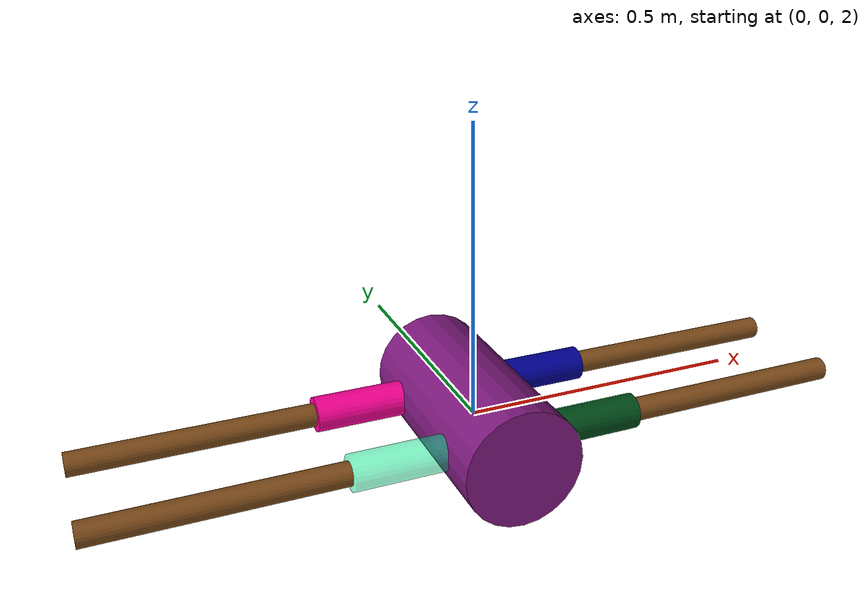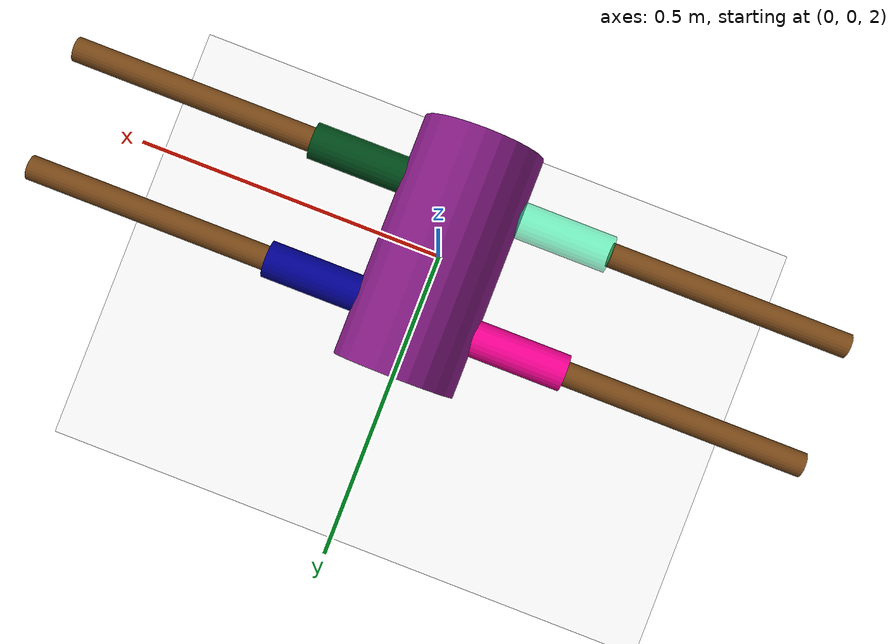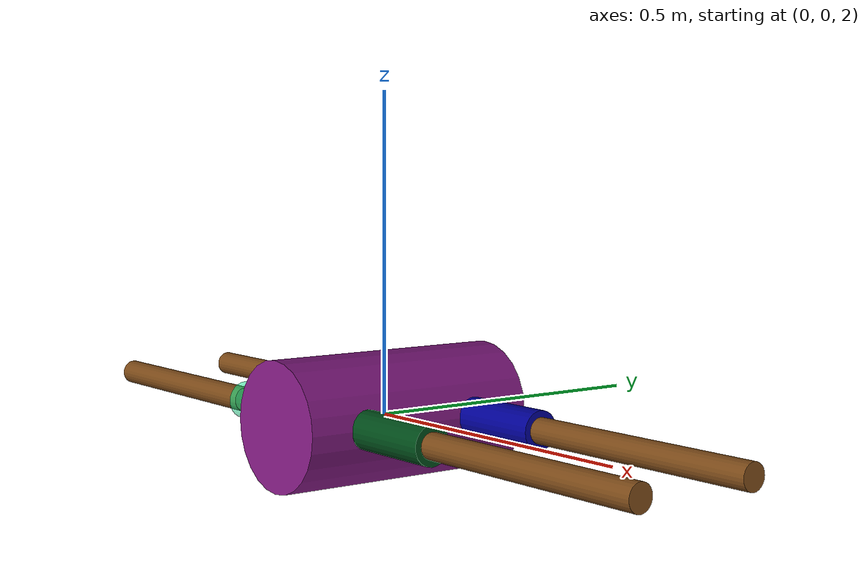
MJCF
<mujoco>
    <option gravity="0 0 -50.81"/>
    <worldbody>
        <light diffuse="0.8 0.8 0.8" pos="0 0 8" dir="0 0 -1"/>
        <geom type="plane" size="3 3 0.1" rgba="1 1 1 1"/>
        <!-- Main Body -->
        <body name="main_body" pos="0 0 2">
            <joint name="main_body" type="free"/>
            <geom type="cylinder" size="0.1 0.2" rgba="0.5 0.1 0.5 1" euler="90 0 90" mass="40"/> <!-- Changed to cylinder -->
            <!-- lightgreen Leg -->
            <body name="leg1" pos="-0.15 -0.1 0" euler="0 90 0">
                <joint name="leg1-1" pos="0 0 0.1 " type="hinge" axis="0 1 0" range="-45 45"/>
                <geom type="cylinder" size="0.03 0.1" rgba="0 1 0.6 0.5" mass="10"/>
                <body name = "shank1" pos="0 0 -0.3">
                    <joint name="leg1-2"  pos="0 0 0.2" type="hinge" axis="0 1 0" range="-90 -70"/>
                    <geom type="cylinder" size="0.02 0.2" rgba="0.5 0.3 0.1 1" mass="30"/>
                </body>
            </body>

            <!-- hotpink Leg -->
            <body name="leg2" pos="-0.15 0.1 0" euler="0 90 0">
                <joint name="leg2-1" pos="0 0 0.1" type="hinge" axis="0 1 0" range="-45 45"/>
                <geom type="cylinder" size="0.03 0.1" rgba="1 0 0.6 1" mass="10"/>
                <body name = "shank2" pos="0 0 -0.3">
                    <joint name="leg2-2" pos="0 0 0.2" type="hinge" axis="0 1 0" range="-90 -70"/>
                    <geom type="cylinder" size="0.02 0.2" rgba="0.5 0.3 0.1 1" mass="30"/>
                </body>
            </body>

            <!-- Green Leg -->
            <body name="leg3" pos="0.15 -0.1 0" euler="0 -90 0">
                <joint name="leg3-1" pos="0 0 0.1" type="hinge" axis="0 1 0" range="-45 45"/>
                <geom type="cylinder" size="0.03 0.1" rgba="0 0.3 0.1 1" mass="10"/>
                <body name = "shank3" pos="0 0 -0.3">
                    <joint name="leg3-2" pos="0 0 0.2" type="hinge" axis="0 1 0" range="70 90"/>
                    <geom type="cylinder" size="0.02 0.2" rgba="0.5 0.3 0.1 1" mass="30"/>
                </body>
            </body>

            <!-- Blue Leg -->
            <body name="leg4" pos="0.15 0.1 0" euler="0 -90 0">
                <joint name="leg4-1" pos="0 0 0.1" type="hinge" axis="0 1 0" range="-45 45"/>
                <geom type="cylinder" size="0.03 0.1" rgba="0 0 0.6 1" mass="10"/>
                <body name = "shank4" pos="0 0 -0.3">
                    <joint name="leg4-2" pos="0 0 0.2" type="hinge" axis="0 1 0" range="70 90"/>
                    <geom type="cylinder" size="0.02 0.2" rgba="0.5 0.3 0.1 1" mass="30"/>
                </body>
            </body>
        </body>

    </worldbody>
    <actuator>
        <motor joint="leg1-1" name="fl1j"/>
        <motor joint="leg1-2" name="fl2j"/>
        <motor joint="leg3-1" name="bl1j"/>
        <motor joint="leg3-2" name="bl2j"/>
        <motor joint="leg2-1" name="fr1j"/>
        <motor joint="leg2-2" name="fr2j"/>
        <motor joint="leg4-1" name="br1j"/>
        <motor joint="leg4-2" name="br2j"/>
    </actuator>
</mujoco>
